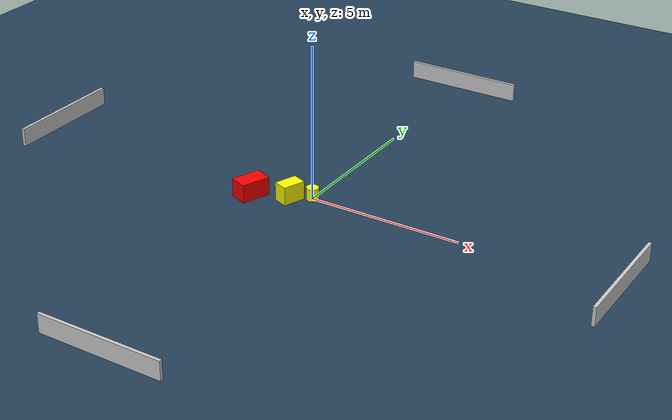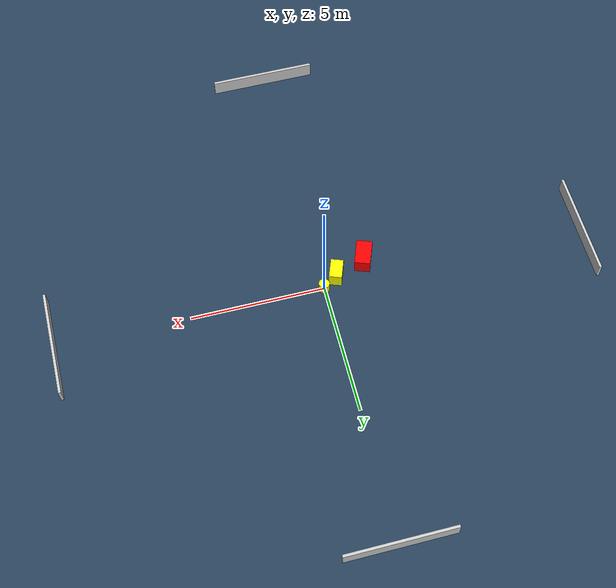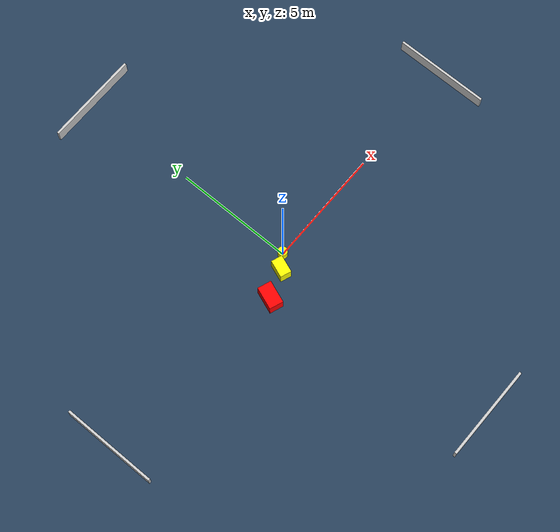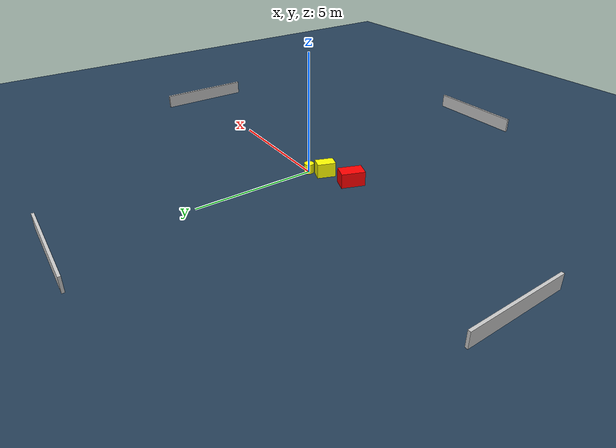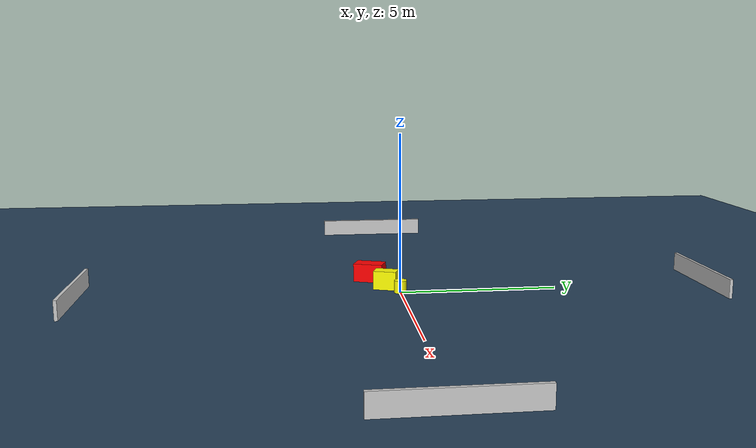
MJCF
<?xml version="1.0" ?>
<mujoco model="generated_environment">
  <option timestep="0.01" integrator="RK4" cone="elliptic"/>
  <default>
    <geom density="1"/>
  </default>
  <asset>
    <texture builtin="gradient" height="3072" name="skybox" rgb1="0.3 0.5 0.7" rgb2="0 0 0" type="skybox" width="512"/>
    <texture builtin="checker" height="300" name="groundplane" rgb1="0.2 0.3 0.4" rgb2="0.1 0.2 0.3" type="2d" width="300"/>
    <material name="groundplane" reflectance="0.2" texrepeat="5 5" texture="groundplane"/>
  </asset>
  <worldbody>
    <light dir="0 0 -1" directional="true" pos="0 0 1.5"/>
    <geom condim="3" friction="0.5 0.005 0.001" material="groundplane" name="floor" pos="0 0 0" size="0 0 0.05" type="plane"/>
    <body name="walls">
      <geom name="wall_1" condim="4" pos="-10.0 0.0 0.3" rgba="0.800000011920929 0.800000011920929 0.800000011920929 1.0" size="0.05 2.0 0.3" type="box"/>
      <geom name="wall_2" condim="4" pos="10.0 0.0 0.3" rgba="0.800000011920929 0.800000011920929 0.800000011920929 1.0" size="0.05 2.0 0.3" type="box"/>
      <geom name="wall_3" condim="4" pos="0.0 -10.0 0.3" rgba="0.800000011920929 0.800000011920929 0.800000011920929 1.0" size="2.0 0.05 0.3" type="box"/>
      <geom name="wall_4" condim="4" pos="0.0 10.0 0.3" rgba="0.800000011920929 0.800000011920929 0.800000011920929 1.0" size="2.0 0.05 0.3" type="box"/>
    </body>
    <body name="robot">
      <joint name="joint_x" type="slide" pos="0 0 0" axis="1 0 0"/>
      <joint name="joint_y" type="slide" pos="0 0 0" axis="0 1 0"/>
      <geom name="robot" type="cylinder" pos="0.0 0.0 0.2" size="0.2 0.2 0.0" mass="5.0" friction="1.0 0.005 0.0001" condim="4" rgba="1.0 1.0 0.0 1.0"/>
    </body>
    <body name="obstacle_1_movable">
      <geom name="obstacle_1_movable" condim="4" pos="-0.5634892364036507 -0.39962223578241524 0.3" euler="0 0 249.67674823947158" friction="0.0 0.005 0.001" rgba="1.0 1.0 0.0 1.0" size="0.3728239093357233 0.2362273062393404 0.3" type="box" mass="0.1"/>
      <joint type="free"/>
    </body>
    <body name="obstacle_2_static">
      <geom name="obstacle_2_static" condim="4" pos="-1.7177471034241107 -0.8216903251400388 0.3" euler="0 0 249.62732150080166" friction="0.0 0.005 0.001" rgba="1.0 0.0 0.0 1.0" size="0.4811539343193554 0.2936141532427887 0.3" type="box"/>
    </body>
  </worldbody>
  <actuator>
    <motor name="actuator_x" joint="joint_x" gear="1" ctrlrange="-1 1"/>
    <motor name="actuator_y" joint="joint_y" gear="1" ctrlrange="-1 1"/>
  </actuator>
</mujoco>
